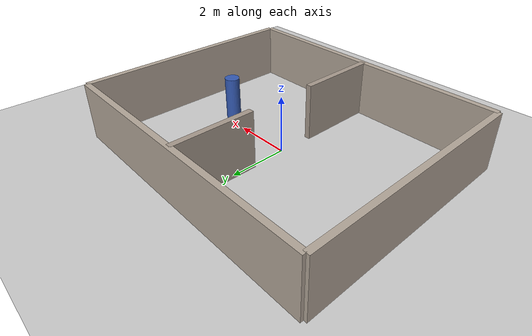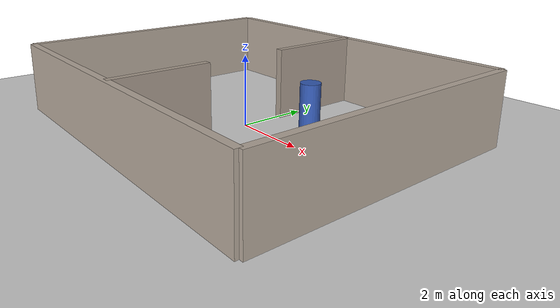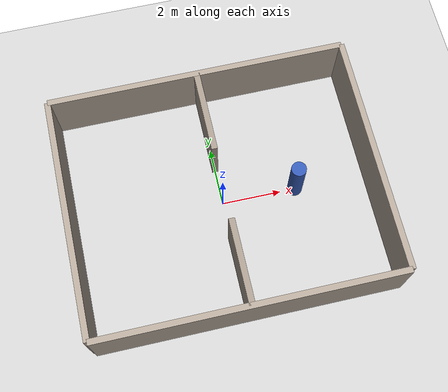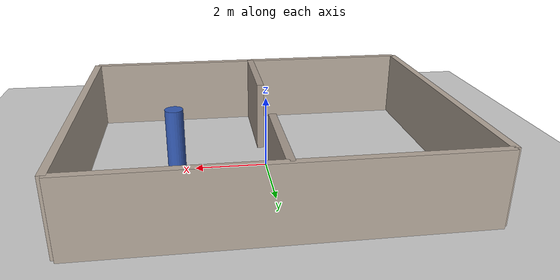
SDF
<?xml version="1.0" ?>
<sdf version="1.8">
  <world name="go2_rl">
    <physics name="1ms" type="ode">
      <max_step_size>0.005</max_step_size>
      <real_time_factor>1.0</real_time_factor>
    </physics>

    <plugin filename="gz-sim-physics-system" name="gz::sim::systems::Physics"/>
    <plugin filename="gz-sim-user-commands-system" name="gz::sim::systems::UserCommands"/>
    <plugin filename="gz-sim-scene-broadcaster-system" name="gz::sim::systems::SceneBroadcaster"/>
    <plugin filename="gz-sim-contact-system" name="gz::sim::systems::Contact"/>
    <plugin filename="gz-sim-imu-system" name="gz::sim::systems::Imu"/>
    <plugin filename="gz-sim-sensors-system" name="gz::sim::systems::Sensors">
      <render_engine>ogre2</render_engine>
    </plugin>

    <scene>
      <ambient>0.6 0.6 0.6 1</ambient>
      <background>0.75 0.75 0.78 1</background>
      <shadows>false</shadows>
    </scene>

    <light type="directional" name="sun">
      <cast_shadows>false</cast_shadows>
      <pose>0 0 10 0 0 0</pose>
      <diffuse>0.8 0.8 0.8 1</diffuse>
      <specular>0.2 0.2 0.2 1</specular>
      <direction>-0.5 0.1 -0.9</direction>
    </light>

    <model name="ground_plane">
      <static>true</static>
      <link name="link">
        <collision name="collision">
          <geometry><plane><normal>0 0 1</normal><size>200 200</size></plane></geometry>
          <surface><friction><ode><mu>1</mu><mu2>1</mu2></ode></friction></surface>
        </collision>
        <visual name="visual">
          <geometry><plane><normal>0 0 1</normal><size>200 200</size></plane></geometry>
          <material><ambient>0.8 0.8 0.8 1</ambient><diffuse>0.8 0.8 0.8 1</diffuse></material>
        </visual>
      </link>
    </model>

    <model name="wall_north"><static>true</static><pose>0 4 1 0 0 0</pose>
      <link name="link"><collision name="c"><geometry><box><size>10 0.2 2</size></box></geometry></collision>
        <visual name="v"><geometry><box><size>10 0.2 2</size></box></geometry>
          <material><ambient>0.7 0.65 0.6 1</ambient><diffuse>0.7 0.65 0.6 1</diffuse></material></visual></link></model>
    <model name="wall_south"><static>true</static><pose>0 -4 1 0 0 0</pose>
      <link name="link"><collision name="c"><geometry><box><size>10 0.2 2</size></box></geometry></collision>
        <visual name="v"><geometry><box><size>10 0.2 2</size></box></geometry>
          <material><ambient>0.7 0.65 0.6 1</ambient><diffuse>0.7 0.65 0.6 1</diffuse></material></visual></link></model>
    <model name="wall_east"><static>true</static><pose>5 0 1 0 0 1.5708</pose>
      <link name="link"><collision name="c"><geometry><box><size>8 0.2 2</size></box></geometry></collision>
        <visual name="v"><geometry><box><size>8 0.2 2</size></box></geometry>
          <material><ambient>0.7 0.65 0.6 1</ambient><diffuse>0.7 0.65 0.6 1</diffuse></material></visual></link></model>
    <model name="wall_west"><static>true</static><pose>-5 0 1 0 0 1.5708</pose>
      <link name="link"><collision name="c"><geometry><box><size>8 0.2 2</size></box></geometry></collision>
        <visual name="v"><geometry><box><size>8 0.2 2</size></box></geometry>
          <material><ambient>0.7 0.65 0.6 1</ambient><diffuse>0.7 0.65 0.6 1</diffuse></material></visual></link></model>
    <model name="wall_divider_a"><static>true</static><pose>0 -2.6 1 0 0 1.5708</pose>
      <link name="link"><collision name="c"><geometry><box><size>2.8 0.2 2</size></box></geometry></collision>
        <visual name="v"><geometry><box><size>2.8 0.2 2</size></box></geometry>
          <material><ambient>0.65 0.6 0.55 1</ambient><diffuse>0.65 0.6 0.55 1</diffuse></material></visual></link></model>
    <model name="wall_divider_b"><static>true</static><pose>0 2.6 1 0 0 1.5708</pose>
      <link name="link"><collision name="c"><geometry><box><size>2.8 0.2 2</size></box></geometry></collision>
        <visual name="v"><geometry><box><size>2.8 0.2 2</size></box></geometry>
          <material><ambient>0.65 0.6 0.55 1</ambient><diffuse>0.65 0.6 0.55 1</diffuse></material></visual></link></model>

    <!-- Kinematic "person" cylinder — moved by scripts/moving_obstacle_gz.py -->
    <model name="moving_person">
      <static>false</static>
      <pose>2.5 0 0.9 0 0 0</pose>
      <link name="link">
        <inertial><mass>40</mass><inertia>
          <ixx>2</ixx><iyy>2</iyy><izz>0.5</izz><ixy>0</ixy><ixz>0</ixz><iyz>0</iyz>
        </inertia></inertial>
        <collision name="c"><geometry><cylinder><radius>0.25</radius><length>1.8</length></cylinder></geometry></collision>
        <visual name="v">
          <geometry><cylinder><radius>0.25</radius><length>1.8</length></cylinder></geometry>
          <material><ambient>0.2 0.35 0.7 1</ambient><diffuse>0.2 0.35 0.7 1</diffuse></material>
        </visual>
      </link>
    </model>
  </world>
</sdf>
